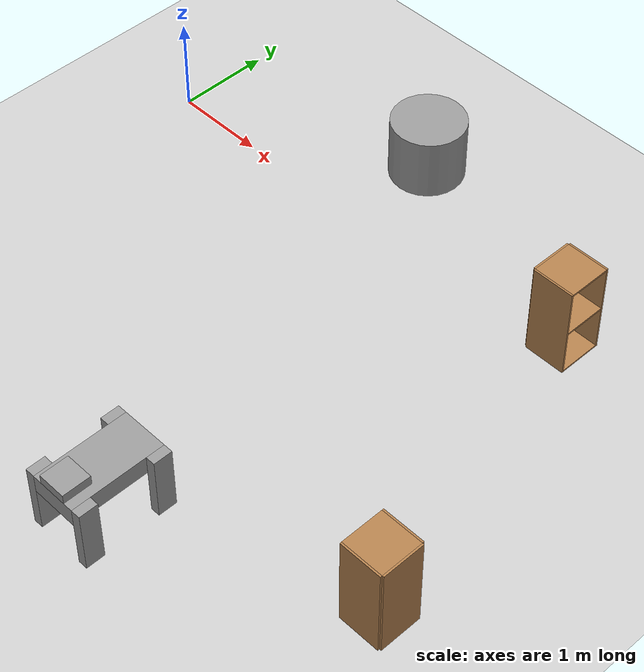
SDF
<sdf version="1.7">
 <world name="default">
  <model name="ground_plane">
   <static>1</static>
   <link name="link">
    <collision name="collision">
     <geometry><plane><normal>0 0 1</normal><size>100 100</size></plane></geometry>
     <surface>
      <contact><collide_bitmask>65535</collide_bitmask></contact>
      <friction><ode><mu>100</mu><mu2>50</mu2></ode></friction>
     </surface>
    </collision>
    <visual name="visual">
     <cast_shadows>0</cast_shadows>
     <geometry><plane><normal>0 0 1</normal><size>100 100</size></plane></geometry>
     <material>
      <script><uri>file://media/materials/scripts/gazebo.material</uri><name>Gazebo/Grey</name></script>
     </material>
    </visual>
   </link>
  </model>
  <model name="robot_clone">
   <link name="link_1_clone">
    <inertial>
     <mass>1</mass>
     <inertia>
      <ixx>0.166667</ixx>
      <ixy>0</ixy>
      <ixz>0</ixz>
      <iyy>0.166667</iyy>
      <iyz>0</iyz>
      <izz>0.166667</izz>
     </inertia>
    </inertial>
    <pose>1e-06 0.058332 0.141667 0 -0 0</pose>
    <visual name="visual">
     <geometry><box><size>0.5 1 0.2</size></box></geometry>
     <material>
      <lighting>1</lighting>
      <script><uri>file://media/materials/scripts/gazebo.material</uri><name>Gazebo/Grey</name></script>
      <shader type="pixel"><normal_map>__default__</normal_map></shader>
      <ambient>0.3 0.3 0.3 1</ambient>
      <diffuse>0.7 0.7 0.7 1</diffuse>
      <specular>0.01 0.01 0.01 1</specular>
      <emissive>0 0 0 1</emissive>
     </material>
    </visual>
    <collision name="collision">
     <geometry><box><size>0.5 1 0.2</size></box></geometry>
     <surface>
      <friction>
       <ode><mu>1</mu><mu2>1</mu2><fdir1>0 0 0</fdir1><slip1>0</slip1><slip2>0</slip2></ode>
       <torsional>
        <coefficient>1</coefficient>
        <patch_radius>0</patch_radius>
        <surface_radius>0</surface_radius>
        <use_patch_radius>1</use_patch_radius>
        <ode><slip>0</slip></ode>
       </torsional>
      </friction>
      <bounce><restitution_coefficient>0</restitution_coefficient><threshold>1e+06</threshold></bounce>
      <contact>
       <collide_without_contact>0</collide_without_contact>
       <collide_without_contact_bitmask>1</collide_without_contact_bitmask>
       <collide_bitmask>1</collide_bitmask>
       <ode>
        <soft_cfm>0</soft_cfm>
        <soft_erp>0.2</soft_erp>
        <kp>1e+13</kp>
        <kd>1</kd>
        <max_vel>0.01</max_vel>
        <min_depth>0</min_depth>
       </ode>
       <bullet>
        <split_impulse>1</split_impulse>
        <split_impulse_penetration_threshold>-0.01</split_impulse_penetration_threshold>
        <soft_cfm>0</soft_cfm>
        <soft_erp>0.2</soft_erp>
        <kp>1e+13</kp>
        <kd>1</kd>
       </bullet>
      </contact>
     </surface>
    </collision>
   </link>
   <link name="link_3_clone">
    <inertial>
     <mass>1</mass>
     <inertia>
      <ixx>0.166667</ixx>
      <ixy>0</ixy>
      <ixz>0</ixz>
      <iyy>0.166667</iyy>
      <iyz>0</iyz>
      <izz>0.166667</izz>
     </inertia>
    </inertial>
    <pose>0.300001 0.458331 -0.108333 0 -0 0</pose>
    <visual name="visual">
     <geometry><box><size>0.1 0.2 0.7</size></box></geometry>
     <material>
      <lighting>1</lighting>
      <script><uri>file://media/materials/scripts/gazebo.material</uri><name>Gazebo/Grey</name></script>
      <shader type="pixel"><normal_map>__default__</normal_map></shader>
      <ambient>0.3 0.3 0.3 1</ambient>
      <diffuse>0.7 0.7 0.7 1</diffuse>
      <specular>0.01 0.01 0.01 1</specular>
      <emissive>0 0 0 1</emissive>
     </material>
    </visual>
    <collision name="collision">
     <geometry><box><size>0.1 0.2 0.7</size></box></geometry>
     <surface>
      <friction>
       <ode><mu>1</mu><mu2>1</mu2><fdir1>0 0 0</fdir1><slip1>0</slip1><slip2>0</slip2></ode>
       <torsional>
        <coefficient>1</coefficient>
        <patch_radius>0</patch_radius>
        <surface_radius>0</surface_radius>
        <use_patch_radius>1</use_patch_radius>
        <ode><slip>0</slip></ode>
       </torsional>
      </friction>
      <bounce><restitution_coefficient>0</restitution_coefficient><threshold>1e+06</threshold></bounce>
      <contact>
       <collide_without_contact>0</collide_without_contact>
       <collide_without_contact_bitmask>1</collide_without_contact_bitmask>
       <collide_bitmask>1</collide_bitmask>
       <ode>
        <soft_cfm>0</soft_cfm>
        <soft_erp>0.2</soft_erp>
        <kp>1e+13</kp>
        <kd>1</kd>
        <max_vel>0.01</max_vel>
        <min_depth>0</min_depth>
       </ode>
       <bullet>
        <split_impulse>1</split_impulse>
        <split_impulse_penetration_threshold>-0.01</split_impulse_penetration_threshold>
        <soft_cfm>0</soft_cfm>
        <soft_erp>0.2</soft_erp>
        <kp>1e+13</kp>
        <kd>1</kd>
       </bullet>
      </contact>
     </surface>
    </collision>
   </link>
   <link name="link_3_clone_clone">
    <inertial>
     <mass>1</mass>
     <inertia>
      <ixx>0.166667</ixx>
      <ixy>0</ixy>
      <ixz>0</ixz>
      <iyy>0.166667</iyy>
      <iyz>0</iyz>
      <izz>0.166667</izz>
     </inertia>
    </inertial>
    <pose>-0.299999 -0.341668 -0.108333 0 -0 0</pose>
    <visual name="visual">
     <geometry><box><size>0.1 0.2 0.7</size></box></geometry>
     <material>
      <lighting>1</lighting>
      <script><uri>file://media/materials/scripts/gazebo.material</uri><name>Gazebo/Grey</name></script>
      <shader type="pixel"><normal_map>__default__</normal_map></shader>
      <ambient>0.3 0.3 0.3 1</ambient>
      <diffuse>0.7 0.7 0.7 1</diffuse>
      <specular>0.01 0.01 0.01 1</specular>
      <emissive>0 0 0 1</emissive>
     </material>
    </visual>
    <collision name="collision">
     <geometry><box><size>0.1 0.2 0.7</size></box></geometry>
     <surface>
      <friction>
       <ode><mu>1</mu><mu2>1</mu2><fdir1>0 0 0</fdir1><slip1>0</slip1><slip2>0</slip2></ode>
       <torsional>
        <coefficient>1</coefficient>
        <patch_radius>0</patch_radius>
        <surface_radius>0</surface_radius>
        <use_patch_radius>1</use_patch_radius>
        <ode><slip>0</slip></ode>
       </torsional>
      </friction>
      <bounce><restitution_coefficient>0</restitution_coefficient><threshold>1e+06</threshold></bounce>
      <contact>
       <collide_without_contact>0</collide_without_contact>
       <collide_without_contact_bitmask>1</collide_without_contact_bitmask>
       <collide_bitmask>1</collide_bitmask>
       <ode>
        <soft_cfm>0</soft_cfm>
        <soft_erp>0.2</soft_erp>
        <kp>1e+13</kp>
        <kd>1</kd>
        <max_vel>0.01</max_vel>
        <min_depth>0</min_depth>
       </ode>
       <bullet>
        <split_impulse>1</split_impulse>
        <split_impulse_penetration_threshold>-0.01</split_impulse_penetration_threshold>
        <soft_cfm>0</soft_cfm>
        <soft_erp>0.2</soft_erp>
        <kp>1e+13</kp>
        <kd>1</kd>
       </bullet>
      </contact>
     </surface>
    </collision>
   </link>
   <link name="link_3_clone_clone_0">
    <inertial>
     <mass>1</mass>
     <inertia>
      <ixx>0.166667</ixx>
      <ixy>0</ixy>
      <ixz>0</ixz>
      <iyy>0.166667</iyy>
      <iyz>0</iyz>
      <izz>0.166667</izz>
     </inertia>
    </inertial>
    <pose>-0.299999 0.458331 -0.108333 0 -0 0</pose>
    <visual name="visual">
     <geometry><box><size>0.1 0.2 0.7</size></box></geometry>
     <material>
      <lighting>1</lighting>
      <script><uri>file://media/materials/scripts/gazebo.material</uri><name>Gazebo/Grey</name></script>
      <shader type="pixel"><normal_map>__default__</normal_map></shader>
      <ambient>0.3 0.3 0.3 1</ambient>
      <diffuse>0.7 0.7 0.7 1</diffuse>
      <specular>0.01 0.01 0.01 1</specular>
      <emissive>0 0 0 1</emissive>
     </material>
    </visual>
    <collision name="collision">
     <geometry><box><size>0.1 0.2 0.7</size></box></geometry>
     <surface>
      <friction>
       <ode><mu>1</mu><mu2>1</mu2><fdir1>0 0 0</fdir1><slip1>0</slip1><slip2>0</slip2></ode>
       <torsional>
        <coefficient>1</coefficient>
        <patch_radius>0</patch_radius>
        <surface_radius>0</surface_radius>
        <use_patch_radius>1</use_patch_radius>
        <ode><slip>0</slip></ode>
       </torsional>
      </friction>
      <bounce><restitution_coefficient>0</restitution_coefficient><threshold>1e+06</threshold></bounce>
      <contact>
       <collide_without_contact>0</collide_without_contact>
       <collide_without_contact_bitmask>1</collide_without_contact_bitmask>
       <collide_bitmask>1</collide_bitmask>
       <ode>
        <soft_cfm>0</soft_cfm>
        <soft_erp>0.2</soft_erp>
        <kp>1e+13</kp>
        <kd>1</kd>
        <max_vel>0.01</max_vel>
        <min_depth>0</min_depth>
       </ode>
       <bullet>
        <split_impulse>1</split_impulse>
        <split_impulse_penetration_threshold>-0.01</split_impulse_penetration_threshold>
        <soft_cfm>0</soft_cfm>
        <soft_erp>0.2</soft_erp>
        <kp>1e+13</kp>
        <kd>1</kd>
       </bullet>
      </contact>
     </surface>
    </collision>
   </link>
   <link name="link_3_clone_clone_1">
    <inertial>
     <mass>1</mass>
     <inertia>
      <ixx>0.166667</ixx>
      <ixy>0</ixy>
      <ixz>0</ixz>
      <iyy>0.166667</iyy>
      <iyz>0</iyz>
      <izz>0.166667</izz>
     </inertia>
    </inertial>
    <pose>0.300001 -0.341668 -0.108333 0 -0 0</pose>
    <visual name="visual">
     <geometry><box><size>0.1 0.2 0.7</size></box></geometry>
     <material>
      <lighting>1</lighting>
      <script><uri>file://media/materials/scripts/gazebo.material</uri><name>Gazebo/Grey</name></script>
      <shader type="pixel"><normal_map>__default__</normal_map></shader>
      <ambient>0.3 0.3 0.3 1</ambient>
      <diffuse>0.7 0.7 0.7 1</diffuse>
      <specular>0.01 0.01 0.01 1</specular>
      <emissive>0 0 0 1</emissive>
     </material>
    </visual>
    <collision name="collision">
     <geometry><box><size>0.1 0.2 0.7</size></box></geometry>
     <surface>
      <friction>
       <ode><mu>1</mu><mu2>1</mu2><fdir1>0 0 0</fdir1><slip1>0</slip1><slip2>0</slip2></ode>
       <torsional>
        <coefficient>1</coefficient>
        <patch_radius>0</patch_radius>
        <surface_radius>0</surface_radius>
        <use_patch_radius>1</use_patch_radius>
        <ode><slip>0</slip></ode>
       </torsional>
      </friction>
      <bounce><restitution_coefficient>0</restitution_coefficient><threshold>1e+06</threshold></bounce>
      <contact>
       <collide_without_contact>0</collide_without_contact>
       <collide_without_contact_bitmask>1</collide_without_contact_bitmask>
       <collide_bitmask>1</collide_bitmask>
       <ode>
        <soft_cfm>0</soft_cfm>
        <soft_erp>0.2</soft_erp>
        <kp>1e+13</kp>
        <kd>1</kd>
        <max_vel>0.01</max_vel>
        <min_depth>0</min_depth>
       </ode>
       <bullet>
        <split_impulse>1</split_impulse>
        <split_impulse_penetration_threshold>-0.01</split_impulse_penetration_threshold>
        <soft_cfm>0</soft_cfm>
        <soft_erp>0.2</soft_erp>
        <kp>1e+13</kp>
        <kd>1</kd>
       </bullet>
      </contact>
     </surface>
    </collision>
   </link>
   <link name="link_4_clone">
    <inertial>
     <mass>1</mass>
     <inertia>
      <ixx>0.166667</ixx>
      <ixy>0</ixy>
      <ixz>0</ixz>
      <iyy>0.166667</iyy>
      <iyz>0</iyz>
      <izz>0.166667</izz>
     </inertia>
    </inertial>
    <pose>1e-06 -0.291669 0.291667 0 -0 0</pose>
    <visual name="visual">
     <geometry><box><size>0.3 0.3 0.1</size></box></geometry>
     <material>
      <lighting>1</lighting>
      <script><uri>file://media/materials/scripts/gazebo.material</uri><name>Gazebo/Grey</name></script>
      <shader type="pixel"><normal_map>__default__</normal_map></shader>
      <ambient>0.3 0.3 0.3 1</ambient>
      <diffuse>0.7 0.7 0.7 1</diffuse>
      <specular>0.01 0.01 0.01 1</specular>
      <emissive>0 0 0 1</emissive>
     </material>
    </visual>
    <collision name="collision">
     <geometry><box><size>0.3 0.3 0.1</size></box></geometry>
     <surface>
      <friction>
       <ode><mu>1</mu><mu2>1</mu2><fdir1>0 0 0</fdir1><slip1>0</slip1><slip2>0</slip2></ode>
       <torsional>
        <coefficient>1</coefficient>
        <patch_radius>0</patch_radius>
        <surface_radius>0</surface_radius>
        <use_patch_radius>1</use_patch_radius>
        <ode><slip>0</slip></ode>
       </torsional>
      </friction>
      <bounce><restitution_coefficient>0</restitution_coefficient><threshold>1e+06</threshold></bounce>
      <contact>
       <collide_without_contact>0</collide_without_contact>
       <collide_without_contact_bitmask>1</collide_without_contact_bitmask>
       <collide_bitmask>1</collide_bitmask>
       <ode>
        <soft_cfm>0</soft_cfm>
        <soft_erp>0.2</soft_erp>
        <kp>1e+13</kp>
        <kd>1</kd>
        <max_vel>0.01</max_vel>
        <min_depth>0</min_depth>
       </ode>
       <bullet>
        <split_impulse>1</split_impulse>
        <split_impulse_penetration_threshold>-0.01</split_impulse_penetration_threshold>
        <soft_cfm>0</soft_cfm>
        <soft_erp>0.2</soft_erp>
        <kp>1e+13</kp>
        <kd>1</kd>
       </bullet>
      </contact>
     </surface>
    </collision>
   </link>
   <joint name="link_1_clone_JOINT_1" type="revolute">
    <parent>link_1_clone</parent>
    <child>link_3_clone_clone_1</child>
    <axis>
     <xyz>1 0 0</xyz>
     <limit>
      <lower>-1.79769e+308</lower>
      <upper>1.79769e+308</upper>
      <effort>-1</effort>
      <velocity>-1</velocity>
     </limit>
     <dynamics>
      <spring_reference>0</spring_reference>
      <spring_stiffness>0</spring_stiffness>
      <damping>0</damping>
     </dynamics>
    </axis>
    <physics>
     <ode><limit><cfm>0</cfm><erp>0.2</erp></limit><suspension><cfm>0</cfm><erp>0.2</erp></suspension></ode>
    </physics>
   </joint>
   <joint name="link_1_clone_JOINT_2" type="revolute">
    <parent>link_1_clone</parent>
    <child>link_3_clone_clone</child>
    <axis>
     <xyz>1 0 0</xyz>
     <limit>
      <lower>-1.79769e+308</lower>
      <upper>1.79769e+308</upper>
      <effort>-1</effort>
      <velocity>-1</velocity>
     </limit>
     <dynamics>
      <spring_reference>0</spring_reference>
      <spring_stiffness>0</spring_stiffness>
      <damping>0</damping>
     </dynamics>
    </axis>
    <physics>
     <ode><limit><cfm>0</cfm><erp>0.2</erp></limit><suspension><cfm>0</cfm><erp>0.2</erp></suspension></ode>
    </physics>
   </joint>
   <joint name="link_1_clone_JOINT_3" type="revolute">
    <parent>link_1_clone</parent>
    <child>link_3_clone_clone_0</child>
    <axis>
     <xyz>1 0 0</xyz>
     <limit>
      <lower>-1.79769e+308</lower>
      <upper>1.79769e+308</upper>
      <effort>-1</effort>
      <velocity>-1</velocity>
     </limit>
     <dynamics>
      <spring_reference>0</spring_reference>
      <spring_stiffness>0</spring_stiffness>
      <damping>0</damping>
     </dynamics>
    </axis>
    <physics>
     <ode><limit><cfm>0</cfm><erp>0.2</erp></limit><suspension><cfm>0</cfm><erp>0.2</erp></suspension></ode>
    </physics>
   </joint>
   <joint name="link_1_clone_JOINT_4" type="revolute">
    <parent>link_1_clone</parent>
    <child>link_3_clone</child>
    <axis>
     <xyz>1 0 0</xyz>
     <limit>
      <lower>-1.79769e+308</lower>
      <upper>1.79769e+308</upper>
      <effort>-1</effort>
      <velocity>-1</velocity>
     </limit>
     <dynamics>
      <spring_reference>0</spring_reference>
      <spring_stiffness>0</spring_stiffness>
      <damping>0</damping>
     </dynamics>
    </axis>
    <physics>
     <ode><limit><cfm>0</cfm><erp>0.2</erp></limit><suspension><cfm>0</cfm><erp>0.2</erp></suspension></ode>
    </physics>
   </joint>
   <joint name="link_1_clone_JOINT_5" type="revolute">
    <parent>link_1_clone</parent>
    <child>link_4_clone</child>
    <axis>
     <xyz>0 0 1</xyz>
     <limit>
      <lower>-1.79769e+308</lower>
      <upper>1.79769e+308</upper>
      <effort>-1</effort>
      <velocity>-1</velocity>
     </limit>
     <dynamics>
      <spring_reference>0</spring_reference>
      <spring_stiffness>0</spring_stiffness>
      <damping>0</damping>
     </dynamics>
    </axis>
    <physics>
     <ode><limit><cfm>0</cfm><erp>0.2</erp></limit><suspension><cfm>0</cfm><erp>0.2</erp></suspension></ode>
    </physics>
   </joint>
   <static>0</static>
   <pose>3.57257 -4.12676 0.458333 1e-06 -0 -0.000433</pose>
  </model>
  <model name="cabinet">
   <static>1</static>
   <link name="cabinet_bottom_plate">
    <inertial>
     <pose>0 0 -1 0 -0 0</pose>
     <inertia><ixx>2.05</ixx><ixy>0</ixy><ixz>0</ixz><iyy>2.05</iyy><iyz>0</iyz><izz>2.05</izz></inertia>
     <mass>25</mass>
    </inertial>
    <collision name="cabinet_bottom_plate_geom">
     <pose>0 0 0.01 0 -0 0</pose>
     <geometry><box><size>0.45 0.45 0.02</size></box></geometry>
    </collision>
    <visual name="cabinet_bottom_plate_geom_visual">
     <pose>0 0 0.01 0 -0 0</pose>
     <geometry><box><size>0.45 0.45 0.02</size></box></geometry>
     <material>
      <script><uri>file://media/materials/scripts/gazebo.material</uri><name>Gazebo/Wood</name></script>
     </material>
    </visual>
    <collision name="cabinet_bottom_plate_geom_cabinet_back_plate">
     <pose>0.235 0 0.51 0 -0 0</pose>
     <geometry><box><size>0.02 0.45 1.02</size></box></geometry>
    </collision>
    <visual name="cabinet_bottom_plate_geom_cabinet_back_plate_visual">
     <pose>0.235 0 0.51 0 -0 0</pose>
     <geometry><box><size>0.02 0.45 1.02</size></box></geometry>
     <material>
      <script><uri>file://media/materials/scripts/gazebo.material</uri><name>Gazebo/Wood</name></script>
     </material>
    </visual>
    <collision name="cabinet_bottom_plate_geom_cabinet_left_plate">
     <pose>0 0.235 0.51 0 -0 0</pose>
     <geometry><box><size>0.45 0.02 1.02</size></box></geometry>
    </collision>
    <visual name="cabinet_bottom_plate_geom_cabinet_left_plate_visual">
     <pose>0 0.235 0.51 0 -0 0</pose>
     <geometry><box><size>0.45 0.02 1.02</size></box></geometry>
     <material>
      <script><uri>file://media/materials/scripts/gazebo.material</uri><name>Gazebo/Wood</name></script>
     </material>
    </visual>
    <collision name="cabinet_bottom_plate_geom_cabinet_middle_plate">
     <pose>0 0 0.51 0 -0 0</pose>
     <geometry><box><size>0.45 0.45 0.02</size></box></geometry>
    </collision>
    <visual name="cabinet_bottom_plate_geom_cabinet_middle_plate_visual">
     <pose>0 0 0.51 0 -0 0</pose>
     <geometry><box><size>0.45 0.45 0.02</size></box></geometry>
     <material>
      <script><uri>file://media/materials/scripts/gazebo.material</uri><name>Gazebo/Wood</name></script>
     </material>
    </visual>
    <collision name="cabinet_bottom_plate_geom_cabinet_right_plate">
     <pose>0 -0.235 0.51 0 -0 0</pose>
     <geometry><box><size>0.45 0.02 1.02</size></box></geometry>
    </collision>
    <visual name="cabinet_bottom_plate_geom_cabinet_right_plate_visual">
     <pose>0 -0.235 0.51 0 -0 0</pose>
     <geometry><box><size>0.45 0.02 1.02</size></box></geometry>
     <material>
      <script><uri>file://media/materials/scripts/gazebo.material</uri><name>Gazebo/Wood</name></script>
     </material>
    </visual>
    <collision name="cabinet_bottom_plate_geom_cabinet_top_plate">
     <pose>0 0 1.01 0 -0 0</pose>
     <geometry><box><size>0.45 0.45 0.02</size></box></geometry>
    </collision>
    <visual name="cabinet_bottom_plate_geom_cabinet_top_plate_visual">
     <pose>0 0 1.01 0 -0 0</pose>
     <geometry><box><size>0.45 0.45 0.02</size></box></geometry>
     <material>
      <script><uri>file://media/materials/scripts/gazebo.material</uri><name>Gazebo/Wood</name></script>
     </material>
    </visual>
   </link>
   <pose>5.02801 0.200991 0 0 -0 3.13901</pose>
  </model>
  <model name="cabinet_clone">
   <static>1</static>
   <link name="cabinet_bottom_plate">
    <inertial>
     <pose>0 0 -1 0 -0 0</pose>
     <inertia><ixx>2.05</ixx><ixy>0</ixy><ixz>0</ixz><iyy>2.05</iyy><iyz>0</iyz><izz>2.05</izz></inertia>
     <mass>25</mass>
    </inertial>
    <collision name="cabinet_bottom_plate_geom">
     <pose>0 0 0.01 0 -0 0</pose>
     <geometry><box><size>0.45 0.45 0.02</size></box></geometry>
    </collision>
    <visual name="cabinet_bottom_plate_geom_visual">
     <pose>0 0 0.01 0 -0 0</pose>
     <geometry><box><size>0.45 0.45 0.02</size></box></geometry>
     <material>
      <script><uri>file://media/materials/scripts/gazebo.material</uri><name>Gazebo/Wood</name></script>
     </material>
    </visual>
    <collision name="cabinet_bottom_plate_geom_cabinet_back_plate">
     <pose>0.235 0 0.51 0 -0 0</pose>
     <geometry><box><size>0.02 0.45 1.02</size></box></geometry>
    </collision>
    <visual name="cabinet_bottom_plate_geom_cabinet_back_plate_visual">
     <pose>0.235 0 0.51 0 -0 0</pose>
     <geometry><box><size>0.02 0.45 1.02</size></box></geometry>
     <material>
      <script><uri>file://media/materials/scripts/gazebo.material</uri><name>Gazebo/Wood</name></script>
     </material>
    </visual>
    <collision name="cabinet_bottom_plate_geom_cabinet_left_plate">
     <pose>0 0.235 0.51 0 -0 0</pose>
     <geometry><box><size>0.45 0.02 1.02</size></box></geometry>
    </collision>
    <visual name="cabinet_bottom_plate_geom_cabinet_left_plate_visual">
     <pose>0 0.235 0.51 0 -0 0</pose>
     <geometry><box><size>0.45 0.02 1.02</size></box></geometry>
     <material>
      <script><uri>file://media/materials/scripts/gazebo.material</uri><name>Gazebo/Wood</name></script>
     </material>
    </visual>
    <collision name="cabinet_bottom_plate_geom_cabinet_middle_plate">
     <pose>0 0 0.51 0 -0 0</pose>
     <geometry><box><size>0.45 0.45 0.02</size></box></geometry>
    </collision>
    <visual name="cabinet_bottom_plate_geom_cabinet_middle_plate_visual">
     <pose>0 0 0.51 0 -0 0</pose>
     <geometry><box><size>0.45 0.45 0.02</size></box></geometry>
     <material>
      <script><uri>file://media/materials/scripts/gazebo.material</uri><name>Gazebo/Wood</name></script>
     </material>
    </visual>
    <collision name="cabinet_bottom_plate_geom_cabinet_right_plate">
     <pose>0 -0.235 0.51 0 -0 0</pose>
     <geometry><box><size>0.45 0.02 1.02</size></box></geometry>
    </collision>
    <visual name="cabinet_bottom_plate_geom_cabinet_right_plate_visual">
     <pose>0 -0.235 0.51 0 -0 0</pose>
     <geometry><box><size>0.45 0.02 1.02</size></box></geometry>
     <material>
      <script><uri>file://media/materials/scripts/gazebo.material</uri><name>Gazebo/Wood</name></script>
     </material>
    </visual>
    <collision name="cabinet_bottom_plate_geom_cabinet_top_plate">
     <pose>0 0 1.01 0 -0 0</pose>
     <geometry><box><size>0.45 0.45 0.02</size></box></geometry>
    </collision>
    <visual name="cabinet_bottom_plate_geom_cabinet_top_plate_visual">
     <pose>0 0 1.01 0 -0 0</pose>
     <geometry><box><size>0.45 0.45 0.02</size></box></geometry>
     <material>
      <script><uri>file://media/materials/scripts/gazebo.material</uri><name>Gazebo/Wood</name></script>
     </material>
    </visual>
   </link>
   <pose>5.97084 -3.13957 0 0 -0 0</pose>
  </model>
  <model name="unit_cylinder_0_0">
   <pose>2.47485 1.04744 0.335021 0 -0 0</pose>
   <link name="link">
    <inertial>
     <mass>1</mass>
     <inertia><ixx>0.145833</ixx><ixy>0</ixy><ixz>0</ixz><iyy>0.145833</iyy><iyz>0</iyz><izz>0.125</izz></inertia>
    </inertial>
    <collision name="collision">
     <geometry><cylinder><radius>0.394281</radius><length>0.67006</length></cylinder></geometry>
    </collision>
    <visual name="visual">
     <geometry><cylinder><radius>0.394281</radius><length>0.67006</length></cylinder></geometry>
     <material>
      <script><name>Gazebo/Grey</name><uri>file://media/materials/scripts/gazebo.material</uri></script>
     </material>
    </visual>
   </link>
  </model>
 </world>
</sdf>
